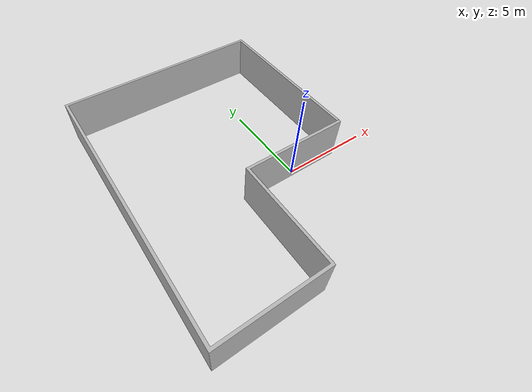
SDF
<sdf version="1.6">
  <model name="neo_workshop_walls">
    <static>true</static>
    <link name="wall_link">
      <visual name="wall_visual">
        <pose>0 0 0 0 0 0</pose>
        <geometry>
          <mesh>
            <uri>model://neo_workshop_walls/meshes/walls.dae</uri>
          </mesh>
        </geometry>
        <material>
          <script>
            <uri>model://neo_workshop_walls/materials/textures/full_wall_texture.png</uri>
          </script>
        </material>
      </visual>
      <collision name="wall_collision">
        <geometry>
          <mesh>
            <uri>model://neo_workshop_walls/meshes/walls.dae</uri>
          </mesh>
        </geometry>
      </collision>
    </link>
  </model>
</sdf>
